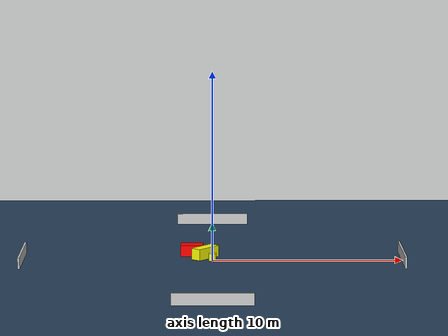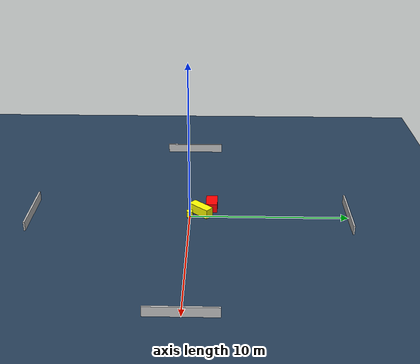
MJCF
<?xml version="1.0" ?>
<mujoco model="generated_environment">
  <option timestep="0.01" integrator="RK4" cone="elliptic"/>
  <default>
    <geom density="1"/>
  </default>
  <asset>
    <texture builtin="gradient" height="3072" name="skybox" rgb1="0.3 0.5 0.7" rgb2="0 0 0" type="skybox" width="512"/>
    <texture builtin="checker" height="300" name="groundplane" rgb1="0.2 0.3 0.4" rgb2="0.1 0.2 0.3" type="2d" width="300"/>
    <material name="groundplane" reflectance="0.2" texrepeat="5 5" texture="groundplane"/>
  </asset>
  <worldbody>
    <light dir="0 0 -1" directional="true" pos="0 0 1.5"/>
    <geom condim="3" friction="0.5 0.005 0.001" material="groundplane" name="floor" pos="0 0 0" size="0 0 0.05" type="plane"/>
    <body name="walls">
      <geom name="wall_1" condim="4" pos="-10.0 0.0 0.3" rgba="0.800000011920929 0.800000011920929 0.800000011920929 1.0" size="0.05 2.0 0.3" type="box"/>
      <geom name="wall_2" condim="4" pos="10.0 0.0 0.3" rgba="0.800000011920929 0.800000011920929 0.800000011920929 1.0" size="0.05 2.0 0.3" type="box"/>
      <geom name="wall_3" condim="4" pos="0.0 -10.0 0.3" rgba="0.800000011920929 0.800000011920929 0.800000011920929 1.0" size="2.0 0.05 0.3" type="box"/>
      <geom name="wall_4" condim="4" pos="0.0 10.0 0.3" rgba="0.800000011920929 0.800000011920929 0.800000011920929 1.0" size="2.0 0.05 0.3" type="box"/>
    </body>
    <body name="robot">
      <joint name="joint_x" type="slide" pos="0 0 0" axis="1 0 0"/>
      <joint name="joint_y" type="slide" pos="0 0 0" axis="0 1 0"/>
      <geom name="robot" type="cylinder" pos="0.0 0.0 0.2" size="0.2 0.2 0.0" mass="5.0" friction="1.0 0.005 0.0001" condim="4" rgba="1.0 1.0 0.0 1.0"/>
    </body>
    <body name="obstacle_1_movable">
      <geom name="obstacle_1_movable" condim="4" pos="-0.3863598176365905 0.702459600680188 0.3" euler="0 0 48.31823377511526" friction="0.0 0.005 0.001" rgba="1.0 1.0 0.0 1.0" size="0.7572698996283014 0.2908935644911705 0.3" type="box" mass="0.1"/>
      <joint type="free"/>
    </body>
    <body name="obstacle_2_static">
      <geom name="obstacle_2_static" condim="4" pos="-1.0920768237862089 1.3831629929831564 0.3" euler="0 0 88.83902985559314" friction="0.0 0.005 0.001" rgba="1.0 0.0 0.0 1.0" size="0.3642684177478117 0.5863632059529442 0.3" type="box"/>
    </body>
  </worldbody>
  <actuator>
    <motor name="actuator_x" joint="joint_x" gear="1" ctrlrange="-1 1"/>
    <motor name="actuator_y" joint="joint_y" gear="1" ctrlrange="-1 1"/>
  </actuator>
</mujoco>
